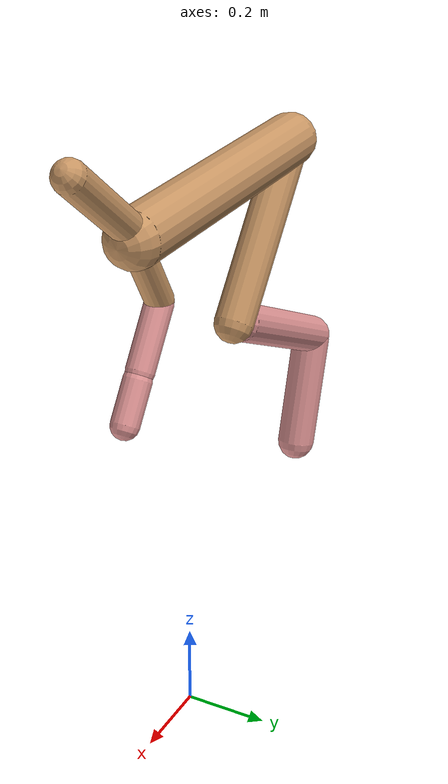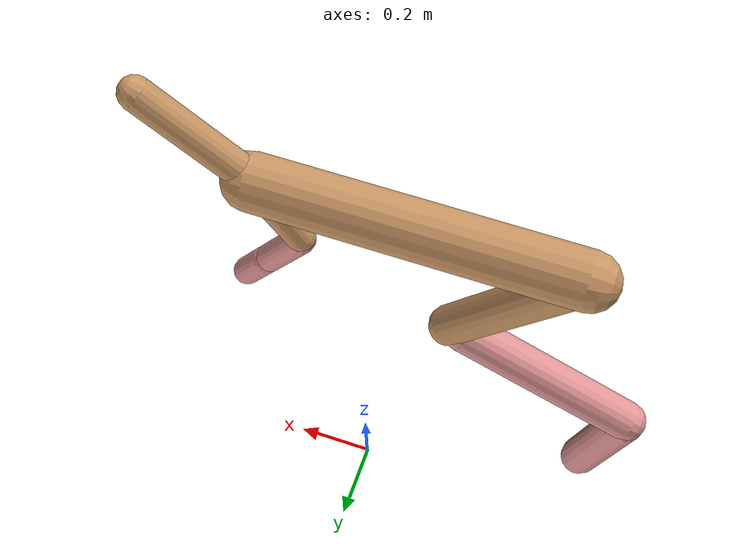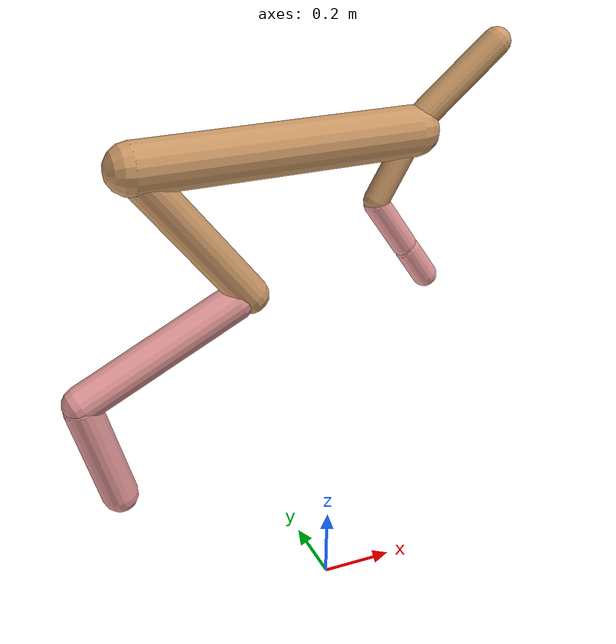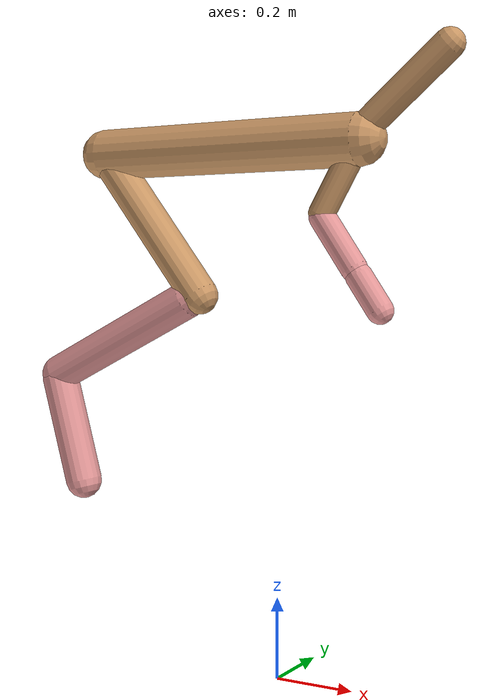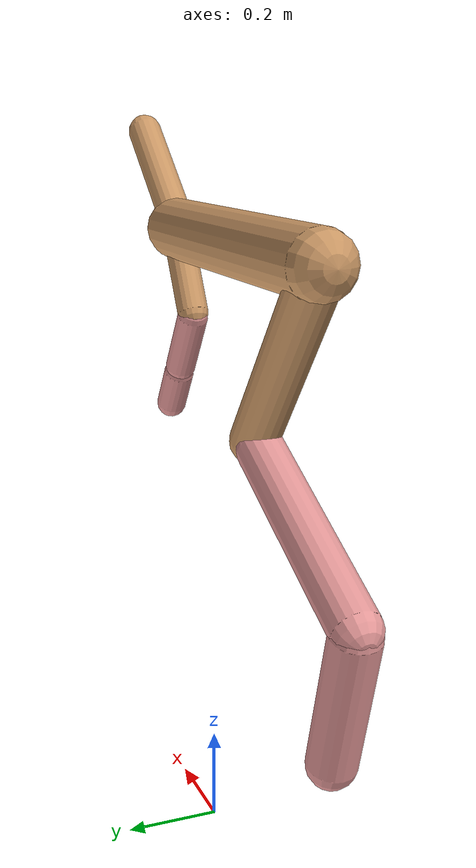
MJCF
<mujoco model="cheetah">
  <compiler angle="radian" coordinate="local" inertiafromgeom="true" settotalmass="14" />
  <default>
    <joint armature=".1" damping=".01" limited="true" solimplimit="0 .8 .03" solreflimit=".02 1" stiffness="8" />
    <geom conaffinity="0" condim="3" contype="1" friction="0.8 .1 .1" rgba="0.8 0.6 .4 1" solimp="0.0 0.8 0.01" solref="0.02 1" />
    <motor ctrllimited="true" ctrlrange="-1 1" />
  </default>
  <size nstack="300000" nuser_geom="1" />
  <option gravity="0 0 -9.81" timestep="0.01" />
  <worldbody>
    <body name="torso" pos="0.0 0.0 1.2948269530271106">
      <joint armature="0" axis="1 0 0" damping="0" limited="false" name="ignorex" pos="0 0 0" stiffness="0" type="slide" />
      <joint armature="0" axis="0 0 1" damping="0" limited="false" name="ignorez" pos="0 0 0" stiffness="0" type="slide" />
      <joint armature="0" axis="0 1 0" damping="0" limited="false" name="ignorey" pos="0 0 0" stiffness="0" type="hinge" />
      <geom fromto="-0.5 0.0 0.0 0.21139538973187955 0.0 0.0" name="torso" size="0.06360856653877277" type="capsule" />
      <geom axisangle="0 1 0 .87" name="head" pos="0.3113953897318795 0.0 0.1" size="0.03613642360298357 0.15" type="capsule" />

      <body name="bthigh" pos="-.5 0 0">
        <joint axis="0 1 0" damping="6" name="bthigh" pos="0 0 0" range="-.52 1.05" stiffness="240" type="hinge" />
        <geom axisangle="0 1 0 -3.8" name="bthigh" pos="0.1445656755466858 0.0 -0.18793537821069156" size="0.04720119980992729 0.2180931425329924" type="capsule" />
        <body name="bshin" pos="0.2491313510933716 0.0 -0.3658707564213831">
          <joint axis="0 1 0" damping="4.5" name="bshin" pos="0 0 0" range="-.785 .785" stiffness="180" type="hinge" />
          <geom axisangle="0 1 0 -2.03" name="bshin" pos="-0.2076308560246285 0.0 -0.10381542801231425" rgba="0.9 0.6 0.6 1" size="0.04720119980992729 0.22561359572378525" type="capsule" />
          <body name="bfoot" pos="-0.415261712049257 0.0 -0.2076308560246285">
            <joint axis="0 1 0" damping="3" name="bfoot" pos="0 0 0" range="-.4 .785" stiffness="120" type="hinge" />
            <geom axisangle="0 1 0 -.27" name="bfoot" pos="0.04400069099132612 0.0 -0.14226890087195446" rgba="0.9 0.6 0.6 1" size="0.04720119980992729 0.14138451998690543" type="capsule" />
            <inertial mass="10" />
          </body>
        </body>
      </body>
      <body name="fthigh" pos="0.21139538973187955 0.0 0.0">
        <joint axis="0 1 0" damping="4.5" name="fthigh" pos="0 0 0" range="-1.5 0.8" stiffness="180" type="hinge" />
        <geom axisangle="0 1 0 .52" name="fthigh" pos="-0.04989554608158897 0.0 -0.0855352218541525" size="0.0322 0.0931" type="capsule" />
        <body name="fshin" pos="-0.09979109216317794 0.0 -0.171070443708305">
          <joint axis="0 1 0" damping="3" name="fshin" pos="0 0 0" range="-1.2 1.1" stiffness="120" type="hinge" />
          <geom axisangle="0 1 0 -.6" name="fshin" pos="0.046381400387749405 0.0 -0.06422040053688378" rgba="0.9 0.6 0.6 1" size="0.0322 0.07419999999999999" type="capsule" />
          <body name="ffoot" pos="0.09276280077549881 0.0 -0.12844080107376757">
            <joint axis="0 1 0" damping="1.5" name="ffoot" pos="0 0 0" range="-3.1 -0.3" stiffness="60" type="hinge" />
            <geom axisangle="0 1 0 -.6" name="ffoot" pos="0.033644090582416526 0.0 -0.05233525201709238" rgba="0.9 0.6 0.6 1" size="0.0322 0.049" type="capsule" />
            <inertial mass="10" />
          </body>
        </body>
      </body>
    </body>
  </worldbody>
  <actuator>
    <motor gear="120" joint="bthigh" name="bthigh" />
    <motor gear="90" joint="bshin" name="bshin" />
    <motor gear="60" joint="bfoot" name="bfoot" />
    <motor gear="120" joint="fthigh" name="fthigh" />
    <motor gear="60" joint="fshin" name="fshin" />
    <motor gear="30" joint="ffoot" name="ffoot" />
  </actuator>
</mujoco>
